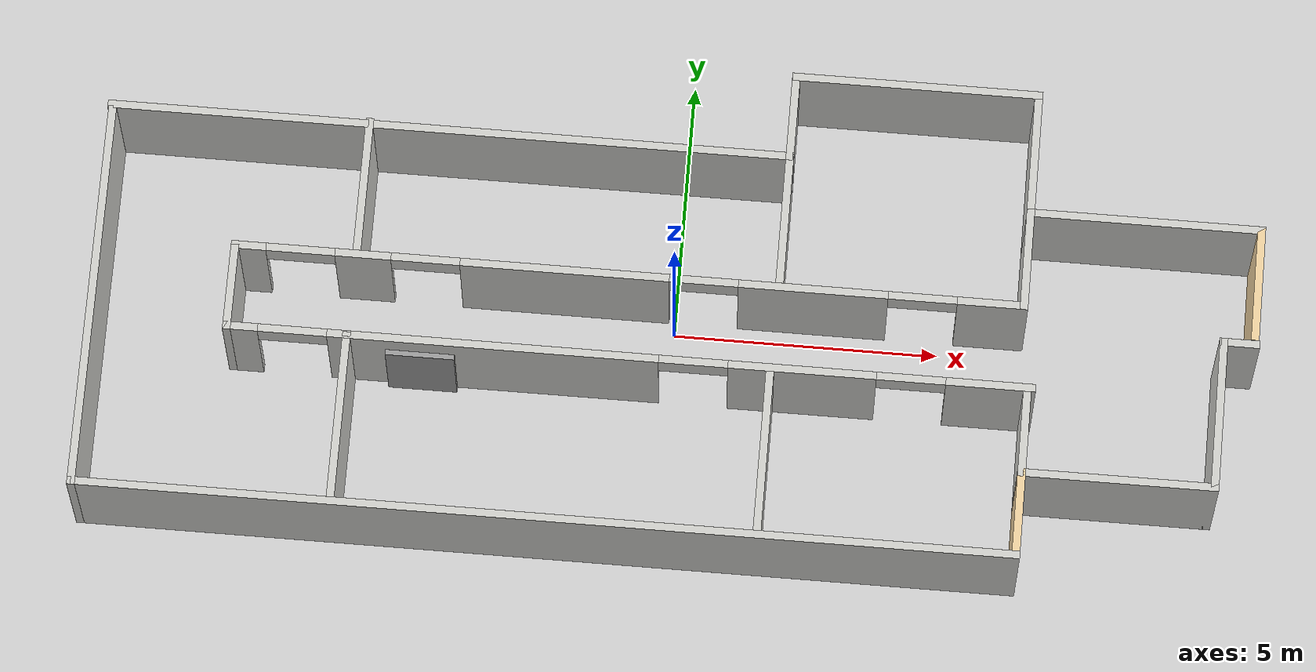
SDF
<sdf version="1.6">
 <world name="default">
  <light name="sun" type="directional">
   <pose>0 0 10 0 -0 0</pose>
   <diffuse>0.8 0.8 0.8 1</diffuse>
   <specular>0.2 0.2 0.2 1</specular>
   <attenuation>
    <range>1000</range>
    <constant>0.9</constant>
    <linear>0.01</linear>
    <quadratic>0.001</quadratic>
   </attenuation>
   <direction>-0.5 0.1 -0.9</direction>
  </light>
  <model name="ground_plane">
   <static>1</static>
   <link name="link">
    <collision name="collision">
     <geometry><plane><normal>0 0 1</normal><size>100 100</size></plane></geometry>
     <surface>
      <contact><collide_bitmask>65535</collide_bitmask></contact>
      <friction><ode><mu>100</mu><mu2>50</mu2></ode></friction>
     </surface>
    </collision>
    <visual name="visual">
     <cast_shadows>0</cast_shadows>
     <geometry><plane><normal>0 0 1</normal><size>100 100</size></plane></geometry>
     <material>
      <script><uri>file://media/materials/scripts/gazebo.material</uri><name>Gazebo/Grey</name></script>
     </material>
    </visual>
   </link>
  </model>
  <gravity>0 0 -9.8</gravity>
  <magnetic_field>6e-06 2.3e-05 -4.2e-05</magnetic_field>
  <atmosphere type="adiabatic"/>
  <physics name="default_physics" default="0" type="ode">
   <max_step_size>0.001</max_step_size>
   <real_time_factor>1</real_time_factor>
   <real_time_update_rate>1000</real_time_update_rate>
  </physics>
  <scene><ambient>0.4 0.4 0.4 1</ambient><background>0.7 0.7 0.7 1</background><shadows>1</shadows></scene>
  <spherical_coordinates>
   <surface_model>EARTH_WGS84</surface_model>
   <latitude_deg>0</latitude_deg>
   <longitude_deg>0</longitude_deg>
   <elevation>0</elevation>
   <heading_deg>0</heading_deg>
  </spherical_coordinates>
  <model name="corridor">
   <link name="Door_2">
    <collision name="Door_2_Collision">
     <geometry><box><size>1.3 0.17 2</size></box></geometry>
     <pose>0 0 1 0 -0 0</pose>
    </collision>
    <visual name="Door_2_Visual">
     <pose>0 0 1 0 -0 0</pose>
     <geometry><box><size>1.3 0.17 2</size></box></geometry>
     <material>
      <script><uri>file://media/materials/scripts/gazebo.material</uri><name>Gazebo/Grey</name></script>
     </material>
    </visual>
    <pose>-4.68358 -1.36416 0 0 -0 0</pose>
   </link>
   <link name="Wall_0">
    <collision name="Wall_0_Collision">
     <geometry><box><size>13 0.15 2.5</size></box></geometry>
     <pose>0 0 1.25 0 -0 0</pose>
    </collision>
    <visual name="Wall_0_Visual">
     <pose>0 0 1.25 0 -0 0</pose>
     <geometry><box><size>13 0.15 2.5</size></box></geometry>
     <material>
      <script><uri>file://media/materials/scripts/gazebo.material</uri><name>Gazebo/CeilingTiled</name></script>
      <ambient>0.921569 0.807843 0.615686 1</ambient>
     </material>
     <meta><layer>0</layer></meta>
    </visual>
    <pose>-4.48522 2.92765 0 0 -0 0</pose>
   </link>
   <link name="Wall_1">
    <collision name="Wall_1_Collision">
     <geometry><box><size>1.75 0.15 2.5</size></box></geometry>
     <pose>0 0 1.25 0 -0 0</pose>
    </collision>
    <visual name="Wall_1_Visual">
     <pose>0 0 1.25 0 -0 0</pose>
     <geometry><box><size>1.75 0.15 2.5</size></box></geometry>
     <material>
      <script><uri>file://media/materials/scripts/gazebo.material</uri><name>Gazebo/CeilingTiled</name></script>
      <ambient>0.921569 0.807843 0.615686 1</ambient>
     </material>
     <meta><layer>0</layer></meta>
    </visual>
    <pose>1.93978 3.72765 0 0 -0 1.5708</pose>
   </link>
   <link name="Wall_10">
    <collision name="Wall_10_Collision">
     <geometry><box><size>17.75 0.15 2.5</size></box></geometry>
     <pose>0 0 1.25 0 -0 0</pose>
    </collision>
    <visual name="Wall_10_Visual">
     <pose>0 0 1.25 0 -0 0</pose>
     <geometry><box><size>17.75 0.15 2.5</size></box></geometry>
     <material>
      <script><uri>file://media/materials/scripts/gazebo.material</uri><name>Gazebo/CeilingTiled</name></script>
      <ambient>0.921569 0.807843 0.615686 1</ambient>
     </material>
     <meta><layer>0</layer></meta>
    </visual>
    <pose>-2.08978 -4.52765 0 0 -0 3.14159</pose>
   </link>
   <link name="Wall_11">
    <collision name="Wall_11_Collision">
     <geometry><box><size>7.5 0.15 2.5</size></box></geometry>
     <pose>0 0 1.25 0 -0 0</pose>
    </collision>
    <visual name="Wall_11_Visual">
     <pose>0 0 1.25 0 -0 0</pose>
     <geometry><box><size>7.5 0.15 2.5</size></box></geometry>
     <material>
      <script><uri>file://media/materials/scripts/gazebo.material</uri><name>Gazebo/CeilingTiled</name></script>
      <ambient>0.921569 0.807843 0.615686 1</ambient>
     </material>
     <meta><layer>0</layer></meta>
    </visual>
    <pose>-10.8898 -0.852645 0 0 -0 1.5708</pose>
   </link>
   <link name="Wall_2">
    <collision name="Wall_2_Collision">
     <geometry><box><size>4.75 0.15 2.5</size></box></geometry>
     <pose>0 0 1.25 0 -0 0</pose>
    </collision>
    <visual name="Wall_2_Visual">
     <pose>0 0 1.25 0 -0 0</pose>
     <geometry><box><size>4.75 0.15 2.5</size></box></geometry>
     <material>
      <script><uri>file://media/materials/scripts/gazebo.material</uri><name>Gazebo/CeilingTiled</name></script>
      <ambient>0.921569 0.807843 0.615686 1</ambient>
     </material>
     <meta><layer>0</layer></meta>
    </visual>
    <pose>4.23978 4.52765 0 0 -0 0</pose>
   </link>
   <link name="Wall_26">
    <collision name="Wall_26_Collision">
     <geometry><box><size>2 0.15 2.5</size></box></geometry>
     <pose>0 0 1.25 0 -0 0</pose>
    </collision>
    <visual name="Wall_26_Visual">
     <pose>0 0 1.25 0 -0 0</pose>
     <geometry><box><size>2 0.15 2.5</size></box></geometry>
     <material>
      <script><uri>file://media/materials/scripts/gazebo.material</uri><name>Gazebo/CeilingTiled</name></script>
      <ambient>0.921569 0.807843 0.615686 1</ambient>
     </material>
     <meta><layer>0</layer></meta>
    </visual>
    <pose>6.53978 1.25265 0 0 -0 -1.5708</pose>
   </link>
   <link name="Wall_27">
    <pose>-0.885222 0.327646 0 0 -0 3.14159</pose>
    <visual name="Wall_27_Visual_0">
     <pose>-6.83701 0 1.25 0 -0 0</pose>
     <geometry><box><size>1.32599 0.15 2.5</size></box></geometry>
     <material>
      <script><uri>file://media/materials/scripts/gazebo.material</uri><name>Gazebo/CeilingTiled</name></script>
      <ambient>0.921569 0.807843 0.615686 1</ambient>
     </material>
     <meta><layer>0</layer></meta>
    </visual>
    <collision name="Wall_27_Collision_0">
     <geometry><box><size>1.32599 0.15 2.5</size></box></geometry>
     <pose>-6.83701 0 1.25 0 -0 0</pose>
    </collision>
    <visual name="Wall_27_Visual_1">
     <pose>-3.46605 0 1.25 0 -0 0</pose>
     <geometry><box><size>2.81591 0.15 2.5</size></box></geometry>
     <material>
      <script><uri>file://media/materials/scripts/gazebo.material</uri><name>Gazebo/CeilingTiled</name></script>
      <ambient>0.921569 0.807843 0.615686 1</ambient>
     </material>
     <meta><layer>0</layer></meta>
    </visual>
    <collision name="Wall_27_Collision_1">
     <geometry><box><size>2.81591 0.15 2.5</size></box></geometry>
     <pose>-3.46605 0 1.25 0 -0 0</pose>
    </collision>
    <visual name="Wall_27_Visual_2">
     <pose>1.21272 0 1.25 0 -0 0</pose>
     <geometry><box><size>3.94164 0.15 2.5</size></box></geometry>
     <material>
      <script><uri>file://media/materials/scripts/gazebo.material</uri><name>Gazebo/CeilingTiled</name></script>
      <ambient>0.921569 0.807843 0.615686 1</ambient>
     </material>
     <meta><layer>0</layer></meta>
    </visual>
    <collision name="Wall_27_Collision_2">
     <geometry><box><size>3.94164 0.15 2.5</size></box></geometry>
     <pose>1.21272 0 1.25 0 -0 0</pose>
    </collision>
    <visual name="Wall_27_Visual_3">
     <pose>5.01203 0 1.25 0 -0 0</pose>
     <geometry><box><size>1.05698 0.15 2.5</size></box></geometry>
     <material>
      <script><uri>file://media/materials/scripts/gazebo.material</uri><name>Gazebo/CeilingTiled</name></script>
      <ambient>0.921569 0.807843 0.615686 1</ambient>
     </material>
     <meta><layer>0</layer></meta>
    </visual>
    <collision name="Wall_27_Collision_3">
     <geometry><box><size>1.05698 0.15 2.5</size></box></geometry>
     <pose>5.01203 0 1.25 0 -0 0</pose>
    </collision>
    <visual name="Wall_27_Visual_4">
     <pose>7.17026 0 1.25 0 -0 0</pose>
     <geometry><box><size>0.659485 0.15 2.5</size></box></geometry>
     <material>
      <script><uri>file://media/materials/scripts/gazebo.material</uri><name>Gazebo/CeilingTiled</name></script>
      <ambient>0.921569 0.807843 0.615686 1</ambient>
     </material>
     <meta><layer>0</layer></meta>
    </visual>
    <collision name="Wall_27_Collision_4">
     <geometry><box><size>0.659485 0.15 2.5</size></box></geometry>
     <pose>7.17026 0 1.25 0 -0 0</pose>
    </collision>
    <visual name="Wall_27_Visual_5">
     <pose>-5.52401 0 2.25 0 -0 0</pose>
     <geometry><box><size>1.3 0.15 0.5</size></box></geometry>
     <material>
      <script><uri>file://media/materials/scripts/gazebo.material</uri><name>Gazebo/CeilingTiled</name></script>
      <ambient>0.921569 0.807843 0.615686 1</ambient>
     </material>
     <meta><layer>0</layer></meta>
    </visual>
    <collision name="Wall_27_Collision_5">
     <geometry><box><size>1.3 0.15 0.5</size></box></geometry>
     <pose>-5.52401 0 2.25 0 -0 0</pose>
    </collision>
    <visual name="Wall_27_Visual_6">
     <pose>-1.4081 0 2.25 0 -0 0</pose>
     <geometry><box><size>1.3 0.15 0.5</size></box></geometry>
     <material>
      <script><uri>file://media/materials/scripts/gazebo.material</uri><name>Gazebo/CeilingTiled</name></script>
      <ambient>0.921569 0.807843 0.615686 1</ambient>
     </material>
     <meta><layer>0</layer></meta>
    </visual>
    <collision name="Wall_27_Collision_6">
     <geometry><box><size>1.3 0.15 0.5</size></box></geometry>
     <pose>-1.4081 0 2.25 0 -0 0</pose>
    </collision>
    <visual name="Wall_27_Visual_7">
     <pose>3.83354 0 2.25 0 -0 0</pose>
     <geometry><box><size>1.3 0.15 0.5</size></box></geometry>
     <material>
      <script><uri>file://media/materials/scripts/gazebo.material</uri><name>Gazebo/CeilingTiled</name></script>
      <ambient>0.921569 0.807843 0.615686 1</ambient>
     </material>
     <meta><layer>0</layer></meta>
    </visual>
    <collision name="Wall_27_Collision_7">
     <geometry><box><size>1.3 0.15 0.5</size></box></geometry>
     <pose>3.83354 0 2.25 0 -0 0</pose>
    </collision>
    <visual name="Wall_27_Visual_8">
     <pose>6.19052 0 2.25 0 -0 0</pose>
     <geometry><box><size>1.3 0.15 0.5</size></box></geometry>
     <material>
      <script><uri>file://media/materials/scripts/gazebo.material</uri><name>Gazebo/CeilingTiled</name></script>
      <ambient>0.921569 0.807843 0.615686 1</ambient>
     </material>
     <meta><layer>0</layer></meta>
    </visual>
    <collision name="Wall_27_Collision_8">
     <geometry><box><size>1.3 0.15 0.5</size></box></geometry>
     <pose>6.19052 0 2.25 0 -0 0</pose>
    </collision>
   </link>
   <link name="Wall_28">
    <collision name="Wall_28_Collision">
     <geometry><box><size>1.75 0.15 2.5</size></box></geometry>
     <pose>0 0 1.25 0 -0 0</pose>
    </collision>
    <visual name="Wall_28_Visual">
     <pose>0 0 1.25 0 -0 0</pose>
     <geometry><box><size>1.75 0.15 2.5</size></box></geometry>
     <material>
      <script><uri>file://media/materials/scripts/gazebo.material</uri><name>Gazebo/CeilingTiled</name></script>
      <ambient>0.921569 0.807843 0.615686 1</ambient>
     </material>
     <meta><layer>0</layer></meta>
    </visual>
    <pose>-8.31022 -0.472354 0 0 -0 -1.5708</pose>
   </link>
   <link name="Wall_3">
    <collision name="Wall_3_Collision">
     <geometry><box><size>2.5 0.15 2.5</size></box></geometry>
     <pose>0 0 1.25 0 -0 0</pose>
    </collision>
    <visual name="Wall_3_Visual">
     <pose>0 0 1.25 0 -0 0</pose>
     <geometry><box><size>2.5 0.15 2.5</size></box></geometry>
     <material>
      <script><uri>file://media/materials/scripts/gazebo.material</uri><name>Gazebo/CeilingTiled</name></script>
      <ambient>0.921569 0.807843 0.615686 1</ambient>
     </material>
     <meta><layer>0</layer></meta>
    </visual>
    <pose>6.53978 3.35265 0 0 -0 -1.5708</pose>
   </link>
   <link name="Wall_34">
    <pose>-0.760222 -1.27235 0 0 -0 0</pose>
    <visual name="Wall_34_Visual_0">
     <pose>-7.29526 0 1.25 0 -0 0</pose>
     <geometry><box><size>0.659485 0.15 2.5</size></box></geometry>
     <material>
      <script><uri>file://media/materials/scripts/gazebo.material</uri><name>Gazebo/CeilingTiled</name></script>
      <ambient>0.921569 0.807843 0.615686 1</ambient>
     </material>
     <meta><layer>0</layer></meta>
    </visual>
    <collision name="Wall_34_Collision_0">
     <geometry><box><size>0.659485 0.15 2.5</size></box></geometry>
     <pose>-7.29526 0 1.25 0 -0 0</pose>
    </collision>
    <visual name="Wall_34_Visual_1">
     <pose>-2.55139 0 1.25 0 -0 0</pose>
     <geometry><box><size>6.22825 0.15 2.5</size></box></geometry>
     <material>
      <script><uri>file://media/materials/scripts/gazebo.material</uri><name>Gazebo/CeilingTiled</name></script>
      <ambient>0.921569 0.807843 0.615686 1</ambient>
     </material>
     <meta><layer>0</layer></meta>
    </visual>
    <collision name="Wall_34_Collision_1">
     <geometry><box><size>6.22825 0.15 2.5</size></box></geometry>
     <pose>-2.55139 0 1.25 0 -0 0</pose>
    </collision>
    <visual name="Wall_34_Visual_2">
     <pose>3.25311 0 1.25 0 -0 0</pose>
     <geometry><box><size>2.78074 0.15 2.5</size></box></geometry>
     <material>
      <script><uri>file://media/materials/scripts/gazebo.material</uri><name>Gazebo/CeilingTiled</name></script>
      <ambient>0.921569 0.807843 0.615686 1</ambient>
     </material>
     <meta><layer>0</layer></meta>
    </visual>
    <collision name="Wall_34_Collision_2">
     <geometry><box><size>2.78074 0.15 2.5</size></box></geometry>
     <pose>3.25311 0 1.25 0 -0 0</pose>
    </collision>
    <visual name="Wall_34_Visual_3">
     <pose>6.78424 0 1.25 0 -0 0</pose>
     <geometry><box><size>1.68152 0.15 2.5</size></box></geometry>
     <material>
      <script><uri>file://media/materials/scripts/gazebo.material</uri><name>Gazebo/CeilingTiled</name></script>
      <ambient>0.921569 0.807843 0.615686 1</ambient>
     </material>
     <meta><layer>0</layer></meta>
    </visual>
    <collision name="Wall_34_Collision_3">
     <geometry><box><size>1.68152 0.15 2.5</size></box></geometry>
     <pose>6.78424 0 1.25 0 -0 0</pose>
    </collision>
    <visual name="Wall_34_Visual_4">
     <pose>-6.31552 0 2.25 0 -0 0</pose>
     <geometry><box><size>1.3 0.15 0.5</size></box></geometry>
     <material>
      <script><uri>file://media/materials/scripts/gazebo.material</uri><name>Gazebo/CeilingTiled</name></script>
      <ambient>0.921569 0.807843 0.615686 1</ambient>
     </material>
     <meta><layer>0</layer></meta>
    </visual>
    <collision name="Wall_34_Collision_4">
     <geometry><box><size>1.3 0.15 0.5</size></box></geometry>
     <pose>-6.31552 0 2.25 0 -0 0</pose>
    </collision>
    <visual name="Wall_34_Visual_5">
     <pose>1.21274 0 2.25 0 -0 0</pose>
     <geometry><box><size>1.3 0.15 0.5</size></box></geometry>
     <material>
      <script><uri>file://media/materials/scripts/gazebo.material</uri><name>Gazebo/CeilingTiled</name></script>
      <ambient>0.921569 0.807843 0.615686 1</ambient>
     </material>
     <meta><layer>0</layer></meta>
    </visual>
    <collision name="Wall_34_Collision_5">
     <geometry><box><size>1.3 0.15 0.5</size></box></geometry>
     <pose>1.21274 0 2.25 0 -0 0</pose>
    </collision>
    <visual name="Wall_34_Visual_6">
     <pose>5.29348 0 2.25 0 -0 0</pose>
     <geometry><box><size>1.3 0.15 0.5</size></box></geometry>
     <material>
      <script><uri>file://media/materials/scripts/gazebo.material</uri><name>Gazebo/CeilingTiled</name></script>
      <ambient>0.921569 0.807843 0.615686 1</ambient>
     </material>
     <meta><layer>0</layer></meta>
    </visual>
    <collision name="Wall_34_Collision_6">
     <geometry><box><size>1.3 0.15 0.5</size></box></geometry>
     <pose>5.29348 0 2.25 0 -0 0</pose>
    </collision>
   </link>
   <link name="Wall_4">
    <collision name="Wall_4_Collision">
     <geometry><box><size>4.5 0.15 2.5</size></box></geometry>
     <pose>0 0 1.25 0 -0 0</pose>
    </collision>
    <visual name="Wall_4_Visual">
     <pose>0 0 1.25 0 -0 0</pose>
     <geometry><box><size>4.5 0.15 2.5</size></box></geometry>
     <material>
      <script><uri>file://media/materials/scripts/gazebo.material</uri><name>Gazebo/CeilingTiled</name></script>
      <ambient>0.921569 0.807843 0.615686 1</ambient>
     </material>
     <meta><layer>0</layer></meta>
    </visual>
    <pose>8.71478 2.17765 0 0 -0 0</pose>
   </link>
   <link name="Wall_45">
    <collision name="Wall_45_Collision">
     <geometry><box><size>2.75 0.15 2.5</size></box></geometry>
     <pose>0 0 1.25 0 -0 0</pose>
    </collision>
    <visual name="Wall_45_Visual">
     <pose>0 0 1.25 0 -0 0</pose>
     <geometry><box><size>2.75 0.15 2.5</size></box></geometry>
     <material>
      <script><uri>file://media/materials/scripts/gazebo.material</uri><name>Gazebo/CeilingTiled</name></script>
      <ambient>0.921569 0.807843 0.615686 1</ambient>
     </material>
     <meta><layer>0</layer></meta>
    </visual>
    <pose>-6.02037 1.66282 0 0 -0 -1.5708</pose>
   </link>
   <link name="Wall_47">
    <collision name="Wall_47_Collision">
     <geometry><box><size>2.75 0.15 2.5</size></box></geometry>
     <pose>0 0 1.25 0 -0 0</pose>
    </collision>
    <visual name="Wall_47_Visual">
     <pose>0 0 1.25 0 -0 0</pose>
     <geometry><box><size>2.75 0.15 2.5</size></box></geometry>
     <material>
      <script><uri>file://media/materials/scripts/gazebo.material</uri><name>Gazebo/CeilingTiled</name></script>
      <ambient>0.921569 0.807843 0.615686 1</ambient>
     </material>
     <meta><layer>0</layer></meta>
    </visual>
    <pose>1.93978 1.62765 0 0 -0 -1.5708</pose>
   </link>
   <link name="Wall_49">
    <collision name="Wall_49_Collision">
     <geometry><box><size>3.25 0.15 2.5</size></box></geometry>
     <pose>0 0 1.25 0 -0 0</pose>
    </collision>
    <visual name="Wall_49_Visual">
     <pose>0 0 1.25 0 -0 0</pose>
     <geometry><box><size>3.25 0.15 2.5</size></box></geometry>
     <material>
      <script><uri>file://media/materials/scripts/gazebo.material</uri><name>Gazebo/CeilingTiled</name></script>
      <ambient>0.921569 0.807843 0.615686 1</ambient>
     </material>
     <meta><layer>0</layer></meta>
    </visual>
    <pose>1.89485 -2.84381 0 0 -0 -1.5708</pose>
   </link>
   <link name="Wall_51">
    <collision name="Wall_51_Collision">
     <geometry><box><size>3.25 0.15 2.5</size></box></geometry>
     <pose>0 0 1.25 0 -0 0</pose>
    </collision>
    <visual name="Wall_51_Visual">
     <pose>0 0 1.25 0 -0 0</pose>
     <geometry><box><size>3.25 0.15 2.5</size></box></geometry>
     <material>
      <script><uri>file://media/materials/scripts/gazebo.material</uri><name>Gazebo/CeilingTiled</name></script>
      <ambient>0.921569 0.807843 0.615686 1</ambient>
     </material>
     <meta><layer>0</layer></meta>
    </visual>
    <pose>-6.05555 -2.84381 0 0 -0 -1.5708</pose>
   </link>
   <link name="Wall_53">
    <collision name="Wall_53_Collision">
     <geometry><box><size>1.75 0.15 2.5</size></box></geometry>
     <pose>0 0 1.25 0 -0 0</pose>
    </collision>
    <visual name="Wall_53_Visual">
     <pose>0 0 1.25 0 -0 0</pose>
     <geometry><box><size>1.75 0.15 2.5</size></box></geometry>
     <material>
      <script><uri>file://media/materials/scripts/gazebo.material</uri><name>Gazebo/CeilingTiled</name></script>
      <ambient>0.921569 0.807843 0.615686 1</ambient>
     </material>
     <meta><layer>0</layer></meta>
    </visual>
    <pose>6.71022 -2.12764 0 0 -0 1.5708</pose>
   </link>
   <link name="Wall_55">
    <collision name="Wall_55_Collision">
     <geometry><box><size>2.25 0.15 2.5</size></box></geometry>
     <pose>0 0 1.25 0 -0 0</pose>
    </collision>
    <visual name="Wall_55_Visual">
     <pose>0 0 1.25 0 -0 0</pose>
     <geometry><box><size>2.25 0.15 2.5</size></box></geometry>
     <material>
      <script><uri>file://media/materials/scripts/gazebo.material</uri><name>Gazebo/Grey</name></script>
      <ambient>0.921569 0.807843 0.615686 1</ambient>
     </material>
     <meta><layer>0</layer></meta>
    </visual>
    <pose>10.8898 1.12765 0 0 -0 -1.5708</pose>
   </link>
   <link name="Wall_58">
    <collision name="Wall_58_Collision">
     <geometry><box><size>3 0.15 2.5</size></box></geometry>
     <pose>0 0 1.25 0 -0 0</pose>
    </collision>
    <visual name="Wall_58_Visual">
     <pose>0 0 1.25 0 -0 0</pose>
     <geometry><box><size>3 0.15 2.5</size></box></geometry>
     <material>
      <script><uri>file://media/materials/scripts/gazebo.material</uri><name>Gazebo/CeilingTiled</name></script>
      <ambient>0.921569 0.807843 0.615686 1</ambient>
     </material>
     <meta><layer>0</layer></meta>
    </visual>
    <pose>10.3102 -1.50265 0 0 -0 1.5708</pose>
   </link>
   <link name="Wall_60">
    <collision name="Wall_60_Collision">
     <geometry><box><size>0.75 0.15 2.5</size></box></geometry>
     <pose>0 0 1.25 0 -0 0</pose>
    </collision>
    <visual name="Wall_60_Visual">
     <pose>0 0 1.25 0 -0 0</pose>
     <geometry><box><size>0.75 0.15 2.5</size></box></geometry>
     <material>
      <script><uri>file://media/materials/scripts/gazebo.material</uri><name>Gazebo/CeilingTiled</name></script>
      <ambient>0.921569 0.807843 0.615686 1</ambient>
     </material>
     <meta><layer>0</layer></meta>
    </visual>
    <pose>10.6102 -0.077645 0 0 -0 0</pose>
   </link>
   <link name="Wall_8">
    <collision name="Wall_8_Collision">
     <geometry><box><size>3.75 0.15 2.5</size></box></geometry>
     <pose>0 0 1.25 0 -0 0</pose>
    </collision>
    <visual name="Wall_8_Visual">
     <pose>0 0 1.25 0 -0 0</pose>
     <geometry><box><size>3.75 0.15 2.5</size></box></geometry>
     <material>
      <script><uri>file://media/materials/scripts/gazebo.material</uri><name>Gazebo/CeilingTiled</name></script>
      <ambient>0.921569 0.807843 0.615686 1</ambient>
     </material>
     <meta><layer>0</layer></meta>
    </visual>
    <pose>8.51022 -2.92765 0 0 -0 3.14159</pose>
   </link>
   <link name="Wall_9">
    <collision name="Wall_9_Collision">
     <geometry><box><size>1.75 0.15 2.5</size></box></geometry>
     <pose>0 0 1.25 0 -0 0</pose>
    </collision>
    <visual name="Wall_9_Visual">
     <pose>0 0 1.25 0 -0 0</pose>
     <geometry><box><size>1.75 0.15 2.5</size></box></geometry>
     <material>
      <script><uri>file://media/materials/scripts/gazebo.material</uri><name>Gazebo/Grey</name></script>
      <ambient>0.921569 0.807843 0.615686 1</ambient>
     </material>
     <meta><layer>0</layer></meta>
    </visual>
    <pose>6.71022 -3.72764 0 0 -0 -1.5708</pose>
   </link>
   <static>1</static>
  </model>
 </world>
</sdf>
